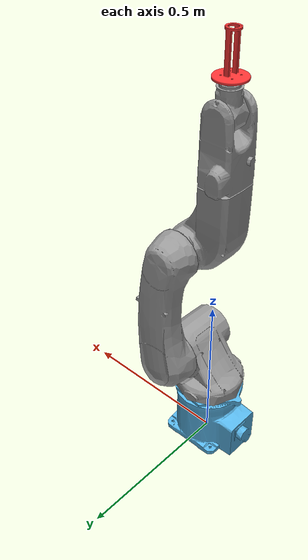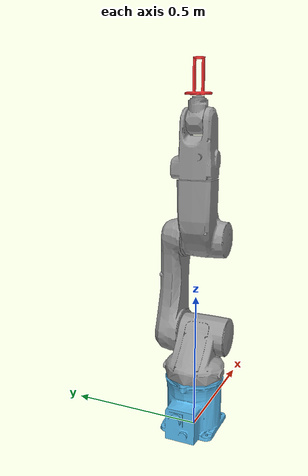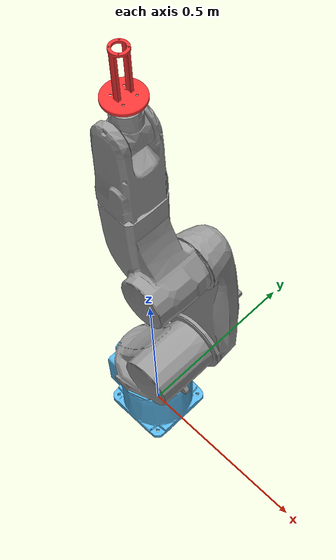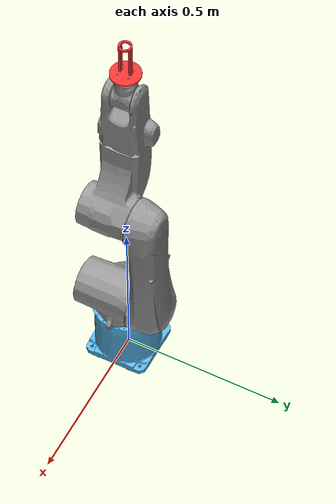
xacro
<?xml version="1.0" encoding="utf-8" ?>
<!-- |    This document was autogenerated by xacro from /home/tomasz/Projects/AddPostPro/src/add_post_pro_robot/urdf/multisensor_robot.urdf.xacro | -->
<!-- |    EDITING THIS FILE BY HAND IS NOT RECOMMENDED                                 | -->
<robot name="add_post_pro_robot">

    <transmission name="trans_1">
        <type>transmission_interface/SimpleTransmission</type>
        <joint name="joint_1">
            <hardwareInterface>hardware_interface/PositionJointInterface</hardwareInterface>
        </joint>
        <actuator name="motor_1">
            <hardwareInterface>hardware_interface/PositionJointInterface</hardwareInterface>
            <mechanicalReduction>1</mechanicalReduction>
        </actuator>
    </transmission>
    <transmission name="trans_2">
        <type>transmission_interface/SimpleTransmission</type>
        <joint name="joint_2">
            <hardwareInterface>hardware_interface/PositionJointInterface</hardwareInterface>
        </joint>
        <actuator name="motor_2">
            <hardwareInterface>hardware_interface/PositionJointInterface</hardwareInterface>
            <mechanicalReduction>1</mechanicalReduction>
        </actuator>
    </transmission>
    <transmission name="trans_3">
        <type>transmission_interface/SimpleTransmission</type>
        <joint name="joint_3">
            <hardwareInterface>hardware_interface/PositionJointInterface</hardwareInterface>
        </joint>
        <actuator name="motor_3">
            <hardwareInterface>hardware_interface/PositionJointInterface</hardwareInterface>
            <mechanicalReduction>1</mechanicalReduction>
        </actuator>
    </transmission>
    <transmission name="trans_4">
        <type>transmission_interface/SimpleTransmission</type>
        <joint name="joint_4">
            <hardwareInterface>hardware_interface/PositionJointInterface</hardwareInterface>
        </joint>
        <actuator name="motor_4">
            <hardwareInterface>hardware_interface/PositionJointInterface</hardwareInterface>
            <mechanicalReduction>1</mechanicalReduction>
        </actuator>
    </transmission>
    <transmission name="trans_5">
        <type>transmission_interface/SimpleTransmission</type>
        <joint name="joint_5">
            <hardwareInterface>hardware_interface/PositionJointInterface</hardwareInterface>
        </joint>
        <actuator name="motor_5">
            <hardwareInterface>hardware_interface/PositionJointInterface</hardwareInterface>
            <mechanicalReduction>1</mechanicalReduction>
        </actuator>
    </transmission>
    <transmission name="trans_6">
        <type>transmission_interface/SimpleTransmission</type>
        <joint name="joint_6">
            <hardwareInterface>hardware_interface/PositionJointInterface</hardwareInterface>
        </joint>
        <actuator name="motor_6">
            <hardwareInterface>hardware_interface/PositionJointInterface</hardwareInterface>
            <mechanicalReduction>1</mechanicalReduction>
        </actuator>
    </transmission>
    <gazebo>
        <plugin filename="libgazebo_ros_control.so" name="gazebo_ros_control">
            <robotNamespace>/add_post_pro_robot</robotNamespace>
        </plugin>
    </gazebo>
    <link name="world" />
    <joint name="joint_w" type="fixed">
        <parent link="world" />
        <child link="base_link" />
        <origin xyz="0 0 0" />
    </joint>
    <link name="base_link">
        <visual>
            <origin rpy="0 0 0" xyz="0 0 0" />
            <geometry>
                <mesh filename="package://denso_robot_descriptions/vs6577_description/meshes/base_link.stl" scale="1 1 1" />
            </geometry>
        </visual>
        <collision>
            <origin rpy="0 0 0" xyz="0 0 0" />
            <geometry>
                <mesh filename="package://denso_robot_descriptions/vs6577_description/meshes/base_link.stl" scale="1 1 1" />
            </geometry>
        </collision>

<inertial>
            <mass value="1" />
            <origin rpy="0.000000 0.000000 0.000000" xyz="0.000000 0.000000 0.000000" />
            <inertia ixx="1" ixy="0" ixz="0" iyy="1" iyz="0" izz="1" />
        </inertial>

    </link>
    <link name="J1">
        <visual>
            <origin rpy="0 0 0" xyz="0 0 0" />
            <geometry>
                <mesh filename="package://denso_robot_descriptions/vs6577_description/meshes/J1.stl" scale="1 1 1" />
            </geometry>
        </visual>
        <collision>
            <origin rpy="0 0 0" xyz="0 0 0" />
            <geometry>
                <mesh filename="package://denso_robot_descriptions/vs6577_description/meshes/J1.stl" scale="1 1 1" />
            </geometry>
        </collision>

<inertial>
            <mass value="1" />
            <origin rpy="0.000000 0.000000 0.000000" xyz="0.000000 0.000000 0.000000" />
            <inertia ixx="1" ixy="0" ixz="0" iyy="1" iyz="0" izz="1" />
        </inertial>

    </link>
    <link name="J2">
        <visual>
            <origin rpy="0 0 0" xyz="0 0 0" />
            <geometry>
                <mesh filename="package://denso_robot_descriptions/vs6577_description/meshes/J2.stl" scale="1 1 1" />
            </geometry>
        </visual>
        <collision>
            <origin rpy="0 0 0" xyz="0 0 0" />
            <geometry>
                <mesh filename="package://denso_robot_descriptions/vs6577_description/meshes/J2.stl" scale="1 1 1" />
            </geometry>
        </collision>

<inertial>
            <mass value="1" />
            <origin rpy="0.000000 0.000000 0.000000" xyz="0.000000 0.000000 0.000000" />
            <inertia ixx="1" ixy="0" ixz="0" iyy="1" iyz="0" izz="1" />
        </inertial>

    </link>
    <link name="J3">
        <visual>
            <origin rpy="0 0 0" xyz="0 0 0" />
            <geometry>
                <mesh filename="package://denso_robot_descriptions/vs6577_description/meshes/J3.stl" scale="1 1 1" />
            </geometry>
        </visual>
        <collision>
            <origin rpy="0 0 0" xyz="0 0 0" />
            <geometry>
                <mesh filename="package://denso_robot_descriptions/vs6577_description/meshes/J3.stl" scale="1 1 1" />
            </geometry>
        </collision>

<inertial>
            <mass value="1" />
            <origin rpy="0.000000 0.000000 0.000000" xyz="0.000000 0.000000 0.000000" />
            <inertia ixx="1" ixy="0" ixz="0" iyy="1" iyz="0" izz="1" />
        </inertial>

    </link>
    <link name="J4">
        <visual>
            <origin rpy="0 0 0" xyz="0 0 0" />
            <geometry>
                <mesh filename="package://denso_robot_descriptions/vs6577_description/meshes/J4.stl" scale="1 1 1" />
            </geometry>
        </visual>
        <collision>
            <origin rpy="0 0 0" xyz="0 0 0" />
            <geometry>
                <mesh filename="package://denso_robot_descriptions/vs6577_description/meshes/J4.stl" scale="1 1 1" />
            </geometry>
        </collision>

<inertial>
            <mass value="1" />
            <origin rpy="0.000000 0.000000 0.000000" xyz="0.000000 0.000000 0.000000" />
            <inertia ixx="1" ixy="0" ixz="0" iyy="1" iyz="0" izz="1" />
        </inertial>

    </link>
    <link name="J5">
        <visual>
            <origin rpy="0 0 0" xyz="0 0 0" />
            <geometry>
                <mesh filename="package://denso_robot_descriptions/vs6577_description/meshes/J5.stl" scale="1 1 1" />
            </geometry>
        </visual>
        <collision>
            <origin rpy="0 0 0" xyz="0 0 0" />
            <geometry>
                <mesh filename="package://denso_robot_descriptions/vs6577_description/meshes/J5.stl" scale="1 1 1" />
            </geometry>
        </collision>

<inertial>
            <mass value="1" />
            <origin rpy="0.000000 0.000000 0.000000" xyz="0.000000 0.000000 0.000000" />
            <inertia ixx="1" ixy="0" ixz="0" iyy="1" iyz="0" izz="1" />
        </inertial>

    </link>
    <link name="J6">
        <visual>
            <origin rpy="0 0 0" xyz="0 0 0" />
            <geometry>
                <mesh filename="package://denso_robot_descriptions/vs6577_description/meshes/J6.stl" scale="1 1 1" />
            </geometry>
        </visual>
        <collision>
            <origin rpy="0 0 0" xyz="0 0 0" />
            <geometry>
                <mesh filename="package://denso_robot_descriptions/vs6577_description/meshes/J6.stl" scale="1 1 1" />
            </geometry>
        </collision>

<inertial>
            <mass value="1" />
            <origin rpy="0.000000 0.000000 0.000000" xyz="0.000000 0.000000 0.000000" />
            <inertia ixx="1" ixy="0" ixz="0" iyy="1" iyz="0" izz="1" />
        </inertial>

    </link>
<link name="Blower_Tool_v2">
    <inertial>
      <origin rpy="0 0 0" xyz="0 0 0"/>
      <mass value="1.0"/>
       <inertia ixx="0.0833" ixy="0.0" ixz="0.0" iyy="0.0833" iyz="0.0" izz="0.1667"/>
    </inertial>
    <visual>
      <origin rpy="0 0 0" xyz="0 0 0"/>
      <geometry>
        <mesh
          filename="package://add_post_pro_simulation/mesh/Blower_Tool_v2.stl" scale="0.001 0.001 0.001" />
      </geometry>

      <material name="red">
        <color rgba="1 0.2 0.2 1"/>
      </material>
    </visual>
    <collision>
      <origin rpy="0 0 0" xyz="0 0 0"/>
      <geometry>
        <mesh
        filename="package://add_post_pro_simulation/mesh/Blower_Tool_v2.stl" scale="0.001 0.001 0.001" />
      </geometry>
    </collision>
  </link>

  <gazebo reference="Blower_Tool_v2">
    <material>Gazebo/White</material>
  </gazebo>
    <gazebo reference="base_link">
        <material>Gazebo/CoM</material>
    </gazebo>
    <gazebo reference="J1">
        <material>Gazebo/Gray</material>
    </gazebo>
    <gazebo reference="J2">
        <material>Gazebo/Gray</material>
    </gazebo>
    <gazebo reference="J3">
        <material>Gazebo/Gray</material>
    </gazebo>
    <gazebo reference="J4">
        <material>Gazebo/Gray</material>
    </gazebo>
    <gazebo reference="J5">
        <material>Gazebo/Gray</material>
    </gazebo>
    <gazebo reference="J6">
        <material>Gazebo/Gray</material>
    </gazebo>
    <joint name="joint_1" type="revolute">
        <parent link="base_link" />
        <child link="J1" />
        <origin rpy="0.000000 0.000000 0.000000" xyz="0.000000 0.000000 0.000000" />
        <axis xyz="-0.000000 -0.000000 1.000000" />
        <limit effort="100" lower="-2.96706" upper="2.96706" velocity="1" />
        <dynamics damping="0" friction="0" />
    </joint>
    <joint name="joint_2" type="revolute">
        <parent link="J1" />
        <child link="J2" />
        <origin rpy="0.000000 0.000000 0.000000" xyz="0.075000 0.000000 0.335000" />
        <axis xyz="-0.000000 1.000000 -0.000000" />
        <limit effort="100" lower="-1.745329" upper="2.356194" velocity="1" />
        <dynamics damping="0" friction="0" />
    </joint>
    <joint name="joint_3" type="revolute">
        <parent link="J2" />
        <child link="J3" />
        <origin rpy="0.000000 0.000000 0.000000" xyz="0.000000 0.000000 0.365000" />
        <axis xyz="-0.000000 1.000000 -0.000000" />
        <limit effort="100" lower="-2.076942" upper="2.949606" velocity="1" />
        <dynamics damping="0" friction="0" />
    </joint>
    <joint name="joint_4" type="revolute">
        <parent link="J3" />
        <child link="J4" />
        <origin rpy="0.000000 0.000000 0.000000" xyz="-0.090000 0.000000 -0.700000" />
        <axis xyz="-0.000000 -0.000000 1.000000" />
        <limit effort="100" lower="-3.316126" upper="3.316126" velocity="1" />
        <dynamics damping="0" friction="0" />
    </joint>
    <joint name="joint_5" type="revolute">
        <parent link="J4" />
        <child link="J5" />
        <origin rpy="0.000000 0.000000 0.000000" xyz="0.000000 0.000000 1.105000" />
        <axis xyz="-0.000000 1.000000 -0.000000" />
        <limit effort="100" lower="-2.094395" upper="2.094395" velocity="1" />
        <dynamics damping="0" friction="0" />
    </joint>
    <joint name="joint_6" type="revolute">
        <parent link="J5" />
        <child link="J6" />
        <origin rpy="0.000000 0.000000 0.000000" xyz="0.000000 0.000000 0.080000" />
        <axis xyz="-0.000000 -0.000000 1.000000" />
        <limit effort="100" lower="-6.283185" upper="6.283185" velocity="1" />
        <dynamics damping="0" friction="0" />
    </joint>
    <joint name="vaccum_joint" type="fixed">
        <parent link="J6" />
        <child link="Blower_Tool_v2" />
        <origin rpy="-1.571000 0.000000 0.000000" xyz="-0.0450000 -0.0450000 0.1190000" />
        <axis xyz="-0.000000 -0.000000 0.000000" />
        <!--limit effort="100" lower="-2.076942" upper="2.949606" velocity="1" /-->
        <dynamics damping="0" friction="0" />
    </joint>

    <!-- Camera link -->

    <!--/link-->
    <!-- Connect camera to parent frame-->
    <!-- Virtual links representing the cameras positons and orientations-->
    <!-- Joints positioning the virtual links with respect to the camera main link-->
        <!-- The default position is change since in Rviz the cloud depth axis is Z not X-->
        <!-- The default position is change since in Rviz the cloud depth axis is Z not X-->
    <!-- GAZEBO DEFINITIONS ***************************************-->
    <!-- Load plugin to the model ("robot" in urdf format)-->
    <!--/gazebo-->
    <!-- Load parameters to model's main link-->
    <!-- DONE -->
    <!-- Scanner link -->
    <!-- camera -->
                    <!-- Noise is sampled independently per pixel on each frame.
               That pixel's noise value is added to each of its color
               channels, which at that point lie in the range [0,1]. -->

    <!-- END OF SCANCONTROL -->

</robot>
